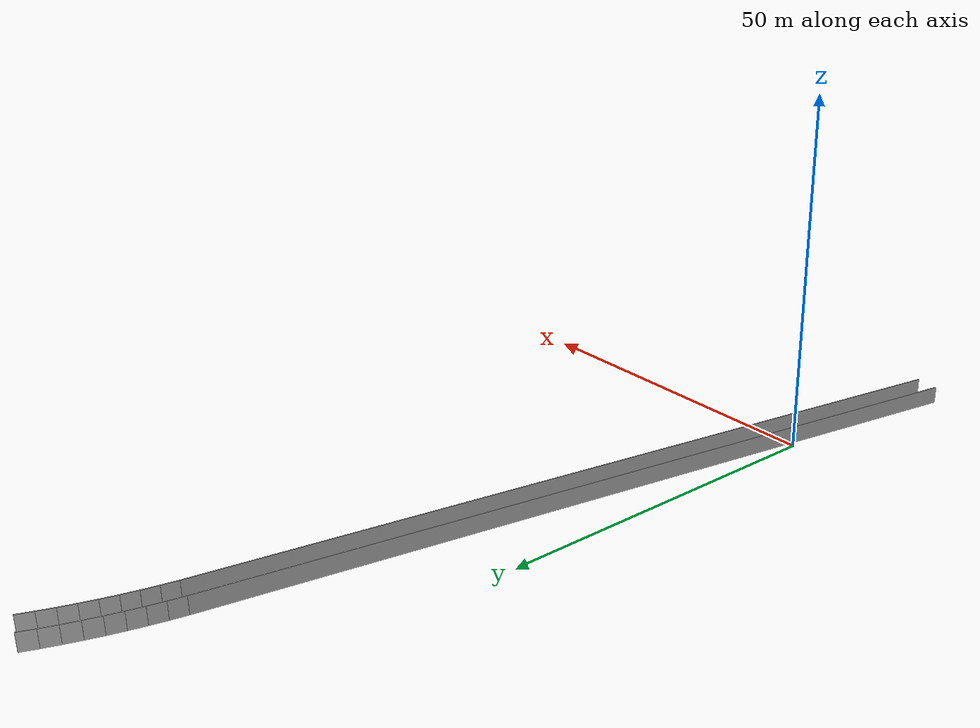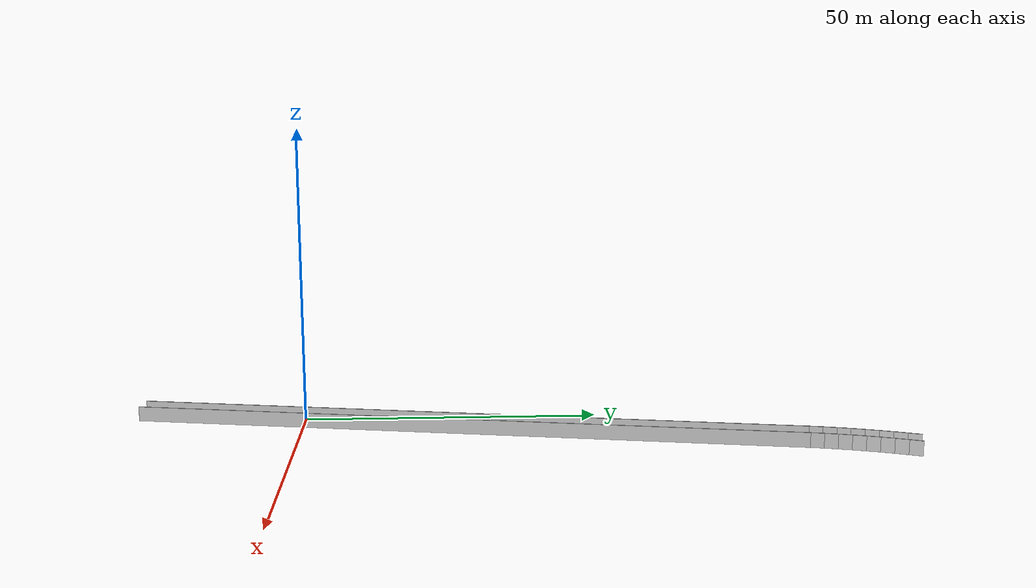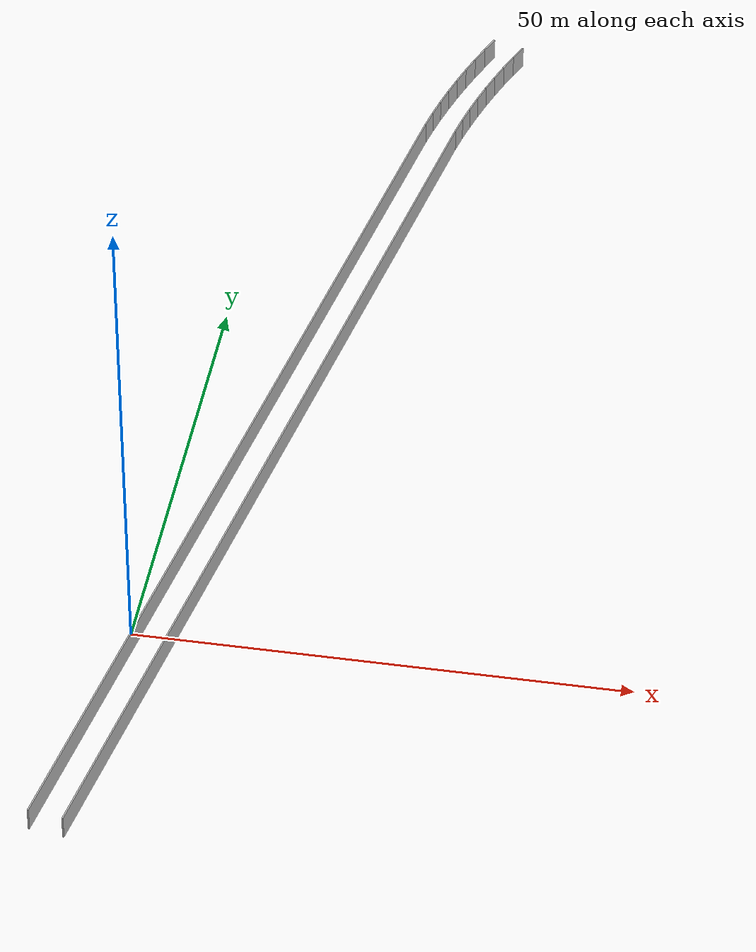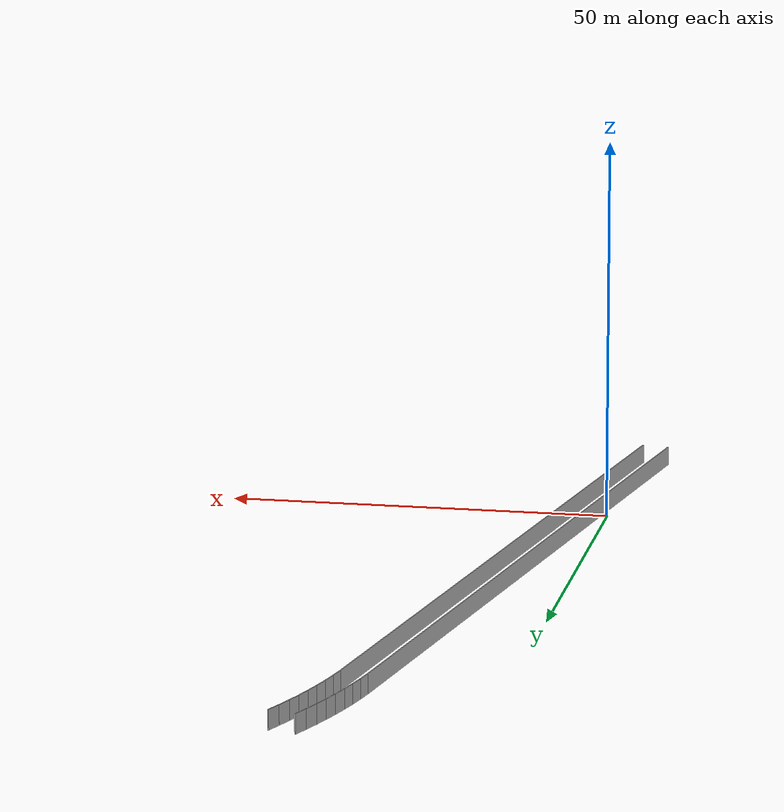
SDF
<?xml version="1.0" ?>
<sdf version="1.6">
  <model name="sps_0601">
    <pose frame="">0 0 0 0 -0 0</pose>
    <static>1</static>
    <self_collide>0</self_collide>
    <allow_auto_disable>0</allow_auto_disable>
    <link name="Wall1630">
      <kinematic>0</kinematic>
      <gravity>1</gravity>
      <self_collide>0</self_collide>
      <collision name="collision">
        <geometry>
          <box>
            <size>113.374 0.15 2.5</size>
          </box>
        </geometry>
        <pose frame="">0 0 0 0 -0 0</pose>
      </collision>
      <visual name="visual">
        <geometry>
          <box>
            <size>113.374 0.15 2.5</size>
          </box>
        </geometry>
        <pose frame="">0 0 0 0 -0 0</pose>
        <cast_shadows>1</cast_shadows>
        <transparency>0.0</transparency>
      </visual>
      <pose frame="">5.90215 27.7712 1.25 0 -0 1.39431</pose>
    </link>
    <link name="Wall1631">
      <kinematic>0</kinematic>
      <gravity>1</gravity>
      <self_collide>0</self_collide>
      <collision name="collision">
        <geometry>
          <box>
            <size>2.22088 0.15 2.5</size>
          </box>
        </geometry>
        <pose frame="">0 0 0 0 -0 0</pose>
      </collision>
      <visual name="visual">
        <geometry>
          <box>
            <size>2.22088 0.15 2.5</size>
          </box>
        </geometry>
        <pose frame="">0 0 0 0 -0 0</pose>
        <cast_shadows>1</cast_shadows>
        <transparency>0.0</transparency>
      </visual>
      <pose frame="">16.0845 84.6642 1.25 0 -0 1.36271</pose>
    </link>
    <link name="Wall1632">
      <kinematic>0</kinematic>
      <gravity>1</gravity>
      <self_collide>0</self_collide>
      <collision name="collision">
        <geometry>
          <box>
            <size>2.22097 0.15 2.5</size>
          </box>
        </geometry>
        <pose frame="">0 0 0 0 -0 0</pose>
      </collision>
      <visual name="visual">
        <geometry>
          <box>
            <size>2.22097 0.15 2.5</size>
          </box>
        </geometry>
        <pose frame="">0 0 0 0 -0 0</pose>
        <cast_shadows>1</cast_shadows>
        <transparency>0.0</transparency>
      </visual>
      <pose frame="">16.5705 86.8311 1.25 0 -0 1.33754</pose>
    </link>
    <link name="Wall1633">
      <kinematic>0</kinematic>
      <gravity>1</gravity>
      <self_collide>0</self_collide>
      <collision name="collision">
        <geometry>
          <box>
            <size>2.22085 0.15 2.5</size>
          </box>
        </geometry>
        <pose frame="">0 0 0 0 -0 0</pose>
      </collision>
      <visual name="visual">
        <geometry>
          <box>
            <size>2.22085 0.15 2.5</size>
          </box>
        </geometry>
        <pose frame="">0 0 0 0 -0 0</pose>
        <cast_shadows>1</cast_shadows>
        <transparency>0.0</transparency>
      </visual>
      <pose frame="">17.1113 88.985 1.25 0 -0 1.31214</pose>
    </link>
    <link name="Wall1634">
      <kinematic>0</kinematic>
      <gravity>1</gravity>
      <self_collide>0</self_collide>
      <collision name="collision">
        <geometry>
          <box>
            <size>2.22088 0.15 2.5</size>
          </box>
        </geometry>
        <pose frame="">0 0 0 0 -0 0</pose>
      </collision>
      <visual name="visual">
        <geometry>
          <box>
            <size>2.22088 0.15 2.5</size>
          </box>
        </geometry>
        <pose frame="">0 0 0 0 -0 0</pose>
        <cast_shadows>1</cast_shadows>
        <transparency>0.0</transparency>
      </visual>
      <pose frame="">17.7063 91.1245 1.25 0 -0 1.28695</pose>
    </link>
    <link name="Wall1635">
      <kinematic>0</kinematic>
      <gravity>1</gravity>
      <self_collide>0</self_collide>
      <collision name="collision">
        <geometry>
          <box>
            <size>2.22086 0.15 2.5</size>
          </box>
        </geometry>
        <pose frame="">0 0 0 0 -0 0</pose>
      </collision>
      <visual name="visual">
        <geometry>
          <box>
            <size>2.22086 0.15 2.5</size>
          </box>
        </geometry>
        <pose frame="">0 0 0 0 -0 0</pose>
        <cast_shadows>1</cast_shadows>
        <transparency>0.0</transparency>
      </visual>
      <pose frame="">18.355 93.2483 1.25 0 -0 1.26169</pose>
    </link>
    <link name="Wall1636">
      <kinematic>0</kinematic>
      <gravity>1</gravity>
      <self_collide>0</self_collide>
      <collision name="collision">
        <geometry>
          <box>
            <size>2.22095 0.15 2.5</size>
          </box>
        </geometry>
        <pose frame="">0 0 0 0 -0 0</pose>
      </collision>
      <visual name="visual">
        <geometry>
          <box>
            <size>2.22095 0.15 2.5</size>
          </box>
        </geometry>
        <pose frame="">0 0 0 0 -0 0</pose>
        <cast_shadows>1</cast_shadows>
        <transparency>0.0</transparency>
      </visual>
      <pose frame="">19.0572 95.3551 1.25 0 -0 1.23644</pose>
    </link>
    <link name="Wall1637">
      <kinematic>0</kinematic>
      <gravity>1</gravity>
      <self_collide>0</self_collide>
      <collision name="collision">
        <geometry>
          <box>
            <size>2.22105 0.15 2.5</size>
          </box>
        </geometry>
        <pose frame="">0 0 0 0 -0 0</pose>
      </collision>
      <visual name="visual">
        <geometry>
          <box>
            <size>2.22105 0.15 2.5</size>
          </box>
        </geometry>
        <pose frame="">0 0 0 0 -0 0</pose>
        <cast_shadows>1</cast_shadows>
        <transparency>0.0</transparency>
      </visual>
      <pose frame="">19.8124 97.4436 1.25 0 -0 1.21127</pose>
    </link>
    <link name="Wall1638">
      <kinematic>0</kinematic>
      <gravity>1</gravity>
      <self_collide>0</self_collide>
      <collision name="collision">
        <geometry>
          <box>
            <size>2.22085 0.15 2.5</size>
          </box>
        </geometry>
        <pose frame="">0 0 0 0 -0 0</pose>
      </collision>
      <visual name="visual">
        <geometry>
          <box>
            <size>2.22085 0.15 2.5</size>
          </box>
        </geometry>
        <pose frame="">0 0 0 0 -0 0</pose>
        <cast_shadows>1</cast_shadows>
        <transparency>0.0</transparency>
      </visual>
      <pose frame="">20.62 99.5123 1.25 0 -0 1.18595</pose>
    </link>
    <link name="Wall1797">
      <kinematic>0</kinematic>
      <gravity>1</gravity>
      <self_collide>0</self_collide>
      <collision name="collision">
        <geometry>
          <box>
            <size>2.18183 0.15 2.5</size>
          </box>
        </geometry>
        <pose frame="">0 0 0 0 -0 0</pose>
      </collision>
      <visual name="visual">
        <geometry>
          <box>
            <size>2.18183 0.15 2.5</size>
          </box>
        </geometry>
        <pose frame="">0 0 0 0 -0 0</pose>
        <cast_shadows>1</cast_shadows>
        <transparency>0.0</transparency>
      </visual>
      <pose frame="">24.0042 98.5418 1.25 0 0 -1.96005</pose>
    </link>
    <link name="Wall1798">
      <kinematic>0</kinematic>
      <gravity>1</gravity>
      <self_collide>0</self_collide>
      <collision name="collision">
        <geometry>
          <box>
            <size>2.18203 0.15 2.5</size>
          </box>
        </geometry>
        <pose frame="">0 0 0 0 -0 0</pose>
      </collision>
      <visual name="visual">
        <geometry>
          <box>
            <size>2.18203 0.15 2.5</size>
          </box>
        </geometry>
        <pose frame="">0 0 0 0 -0 0</pose>
        <cast_shadows>1</cast_shadows>
        <transparency>0.0</transparency>
      </visual>
      <pose frame="">23.2025 96.5127 1.25 0 0 -1.93409</pose>
    </link>
    <link name="Wall1799">
      <kinematic>0</kinematic>
      <gravity>1</gravity>
      <self_collide>0</self_collide>
      <collision name="collision">
        <geometry>
          <box>
            <size>2.1819 0.15 2.5</size>
          </box>
        </geometry>
        <pose frame="">0 0 0 0 -0 0</pose>
      </collision>
      <visual name="visual">
        <geometry>
          <box>
            <size>2.1819 0.15 2.5</size>
          </box>
        </geometry>
        <pose frame="">0 0 0 0 -0 0</pose>
        <cast_shadows>1</cast_shadows>
        <transparency>0.0</transparency>
      </visual>
      <pose frame="">22.4535 94.4635 1.25 0 0 -1.90835</pose>
    </link>
    <link name="Wall1800">
      <kinematic>0</kinematic>
      <gravity>1</gravity>
      <self_collide>0</self_collide>
      <collision name="collision">
        <geometry>
          <box>
            <size>2.18199 0.15 2.5</size>
          </box>
        </geometry>
        <pose frame="">0 0 0 0 -0 0</pose>
      </collision>
      <visual name="visual">
        <geometry>
          <box>
            <size>2.18199 0.15 2.5</size>
          </box>
        </geometry>
        <pose frame="">0 0 0 0 -0 0</pose>
        <cast_shadows>1</cast_shadows>
        <transparency>0.0</transparency>
      </visual>
      <pose frame="">21.7576 92.3957 1.25 0 0 -1.8826</pose>
    </link>
    <link name="Wall1801">
      <kinematic>0</kinematic>
      <gravity>1</gravity>
      <self_collide>0</self_collide>
      <collision name="collision">
        <geometry>
          <box>
            <size>2.18198 0.15 2.5</size>
          </box>
        </geometry>
        <pose frame="">0 0 0 0 -0 0</pose>
      </collision>
      <visual name="visual">
        <geometry>
          <box>
            <size>2.18198 0.15 2.5</size>
          </box>
        </geometry>
        <pose frame="">0 0 0 0 -0 0</pose>
        <cast_shadows>1</cast_shadows>
        <transparency>0.0</transparency>
      </visual>
      <pose frame="">21.1153 90.3106 1.25 0 0 -1.85663</pose>
    </link>
    <link name="Wall1802">
      <kinematic>0</kinematic>
      <gravity>1</gravity>
      <self_collide>0</self_collide>
      <collision name="collision">
        <geometry>
          <box>
            <size>2.1818 0.15 2.5</size>
          </box>
        </geometry>
        <pose frame="">0 0 0 0 -0 0</pose>
      </collision>
      <visual name="visual">
        <geometry>
          <box>
            <size>2.1818 0.15 2.5</size>
          </box>
        </geometry>
        <pose frame="">0 0 0 0 -0 0</pose>
        <cast_shadows>1</cast_shadows>
        <transparency>0.0</transparency>
      </visual>
      <pose frame="">20.5271 88.2097 1.25 0 0 -1.83092</pose>
    </link>
    <link name="Wall1803">
      <kinematic>0</kinematic>
      <gravity>1</gravity>
      <self_collide>0</self_collide>
      <collision name="collision">
        <geometry>
          <box>
            <size>2.18195 0.15 2.5</size>
          </box>
        </geometry>
        <pose frame="">0 0 0 0 -0 0</pose>
      </collision>
      <visual name="visual">
        <geometry>
          <box>
            <size>2.18195 0.15 2.5</size>
          </box>
        </geometry>
        <pose frame="">0 0 0 0 -0 0</pose>
        <cast_shadows>1</cast_shadows>
        <transparency>0.0</transparency>
      </visual>
      <pose frame="">19.9933 86.0943 1.25 0 0 -1.80502</pose>
    </link>
    <link name="Wall1804">
      <kinematic>0</kinematic>
      <gravity>1</gravity>
      <self_collide>0</self_collide>
      <collision name="collision">
        <geometry>
          <box>
            <size>2.18199 0.15 2.5</size>
          </box>
        </geometry>
        <pose frame="">0 0 0 0 -0 0</pose>
      </collision>
      <visual name="visual">
        <geometry>
          <box>
            <size>2.18199 0.15 2.5</size>
          </box>
        </geometry>
        <pose frame="">0 0 0 0 -0 0</pose>
        <cast_shadows>1</cast_shadows>
        <transparency>0.0</transparency>
      </visual>
      <pose frame="">19.5145 83.9657 1.25 0 0 -1.7791</pose>
    </link>
    <link name="Wall1805">
      <kinematic>0</kinematic>
      <gravity>1</gravity>
      <self_collide>0</self_collide>
      <collision name="collision">
        <geometry>
          <box>
            <size>113.25 0.15 2.5</size>
          </box>
        </geometry>
        <pose frame="">0 0 0 0 -0 0</pose>
      </collision>
      <visual name="visual">
        <geometry>
          <box>
            <size>113.25 0.15 2.5</size>
          </box>
        </geometry>
        <pose frame="">0 0 0 0 -0 0</pose>
        <cast_shadows>1</cast_shadows>
        <transparency>0.0</transparency>
      </visual>
      <pose frame="">9.34685 27.1527 1.25 0 0 -1.74729</pose>
    </link>
  </model>
</sdf>
